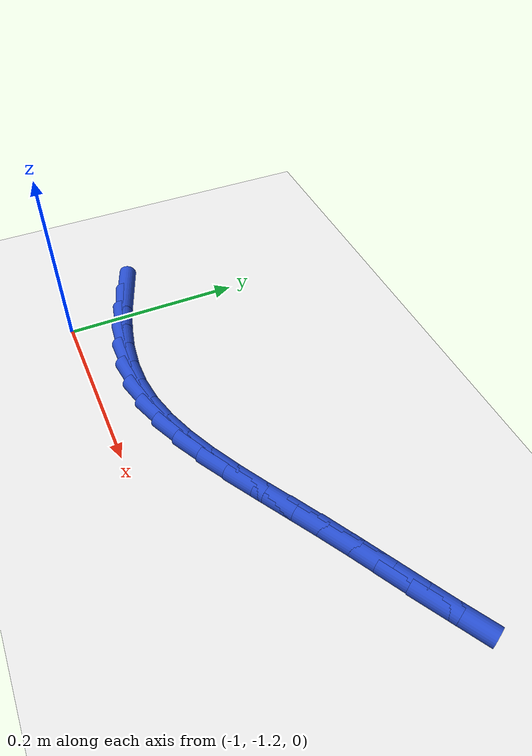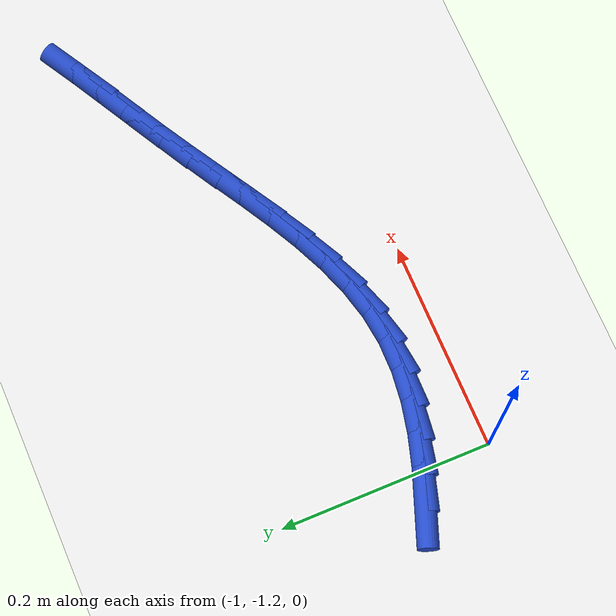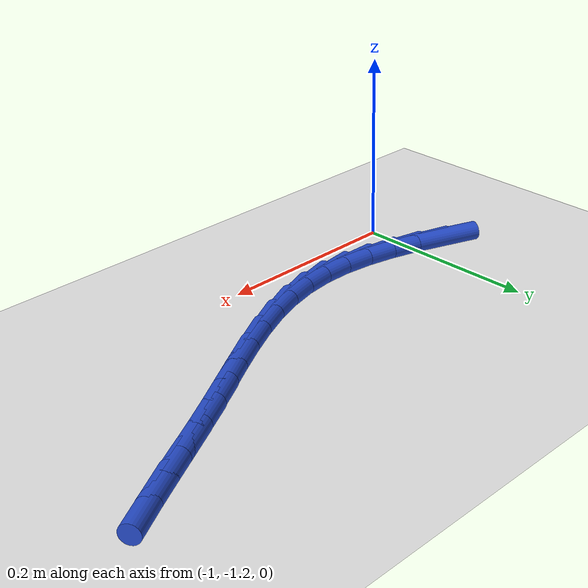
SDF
<sdf version="1.6">
 <world name="default">
  <model name="ground_plane">
   <static>1</static>
   <link name="link">
    <collision name="collision">
     <geometry><plane><normal>0 0 1</normal><size>100 100</size></plane></geometry>
     <surface><friction><ode><mu>100</mu><mu2>50</mu2></ode></friction></surface>
    </collision>
    <visual name="visual">
     <cast_shadows>0</cast_shadows>
     <geometry><plane><normal>0 0 1</normal><size>100 100</size></plane></geometry>
     <material>
      <script><uri>file://media/materials/scripts/gazebo.material</uri><name>Gazebo/WhiteGlow</name></script>
     </material>
    </visual>
   </link>
  </model>
  <model name="line">
   <link name="link_167">
    <pose>-1.0293642330541921 -1.1243338561593095 0.01 0 1.57 -0.3585178327819252</pose>
    <collision name="collision">
     <geometry><cylinder><radius>0.01</radius><length>0.08</length></cylinder></geometry>
    </collision>
    <visual name="visual">
     <material>
      <script><name>Gazebo/Blue</name><uri>file://media/materials/scripts/gazebo.material</uri></script>
     </material>
     <geometry><cylinder><radius>0.01</radius><length>0.08</length></cylinder></geometry>
    </visual>
   </link>
   <link name="link_168">
    <pose>-0.9989030900524057 -1.1357480008445153 0.01 0 1.57 -0.29635444144100104</pose>
    <collision name="collision">
     <geometry><cylinder><radius>0.01</radius><length>0.08</length></cylinder></geometry>
    </collision>
    <visual name="visual">
     <material>
      <script><name>Gazebo/Blue</name><uri>file://media/materials/scripts/gazebo.material</uri></script>
     </material>
     <geometry><cylinder><radius>0.01</radius><length>0.08</length></cylinder></geometry>
    </visual>
   </link>
   <link name="link_169">
    <pose>-0.9685378671160609 -1.1450199103271503 0.01 0 1.57 -0.2180742663289672</pose>
    <collision name="collision">
     <geometry><cylinder><radius>0.01</radius><length>0.08</length></cylinder></geometry>
    </collision>
    <visual name="visual">
     <material>
      <script><name>Gazebo/Blue</name><uri>file://media/materials/scripts/gazebo.material</uri></script>
     </material>
     <geometry><cylinder><radius>0.01</radius><length>0.08</length></cylinder></geometry>
    </visual>
   </link>
   <link name="link_170">
    <pose>-0.9382914848358047 -1.151722455956401 0.01 0 1.57 -0.12248949251247106</pose>
    <collision name="collision">
     <geometry><cylinder><radius>0.01</radius><length>0.08</length></cylinder></geometry>
    </collision>
    <visual name="visual">
     <material>
      <script><name>Gazebo/Blue</name><uri>file://media/materials/scripts/gazebo.material</uri></script>
     </material>
     <geometry><cylinder><radius>0.01</radius><length>0.08</length></cylinder></geometry>
    </visual>
   </link>
   <link name="link_171">
    <pose>-0.9081868638022816 -1.155428509081456 0.01 0 1.57 -0.009433004892403611</pose>
    <collision name="collision">
     <geometry><cylinder><radius>0.01</radius><length>0.08</length></cylinder></geometry>
    </collision>
    <visual name="visual">
     <material>
      <script><name>Gazebo/Blue</name><uri>file://media/materials/scripts/gazebo.material</uri></script>
     </material>
     <geometry><cylinder><radius>0.01</radius><length>0.08</length></cylinder></geometry>
    </visual>
   </link>
   <link name="link_172">
    <pose>-0.8782469246061372 -1.1557109410515023 0.01 0 1.57 0.11899926325304766</pose>
    <collision name="collision">
     <geometry><cylinder><radius>0.01</radius><length>0.08</length></cylinder></geometry>
    </collision>
    <visual name="visual">
     <material>
      <script><name>Gazebo/Blue</name><uri>file://media/materials/scripts/gazebo.material</uri></script>
     </material>
     <geometry><cylinder><radius>0.01</radius><length>0.08</length></cylinder></geometry>
    </visual>
   </link>
   <link name="link_173">
    <pose>-0.8484940218625566 -1.152153559854448 0.01 0 1.57 0.2445189363759107</pose>
    <collision name="collision">
     <geometry><cylinder><radius>0.01</radius><length>0.08</length></cylinder></geometry>
    </collision>
    <visual name="visual">
     <material>
      <script><name>Gazebo/Blue</name><uri>file://media/materials/scripts/gazebo.material</uri></script>
     </material>
     <geometry><cylinder><radius>0.01</radius><length>0.08</length></cylinder></geometry>
    </visual>
   </link>
   <link name="link_174">
    <pose>-0.8189279312833305 -1.1447764773939568 0.01 0 1.57 0.346039063875119</pose>
    <collision name="collision">
     <geometry><cylinder><radius>0.01</radius><length>0.08</length></cylinder></geometry>
    </collision>
    <visual name="visual">
     <material>
      <script><name>Gazebo/Blue</name><uri>file://media/materials/scripts/gazebo.material</uri></script>
     </material>
     <geometry><cylinder><radius>0.01</radius><length>0.08</length></cylinder></geometry>
    </visual>
   </link>
   <link name="link_175">
    <pose>-0.7895187597805275 -1.1341731112504632 0.01 0 1.57 0.4234041332873807</pose>
    <collision name="collision">
     <geometry><cylinder><radius>0.01</radius><length>0.08</length></cylinder></geometry>
    </collision>
    <visual name="visual">
     <material>
      <script><name>Gazebo/Blue</name><uri>file://media/materials/scripts/gazebo.material</uri></script>
     </material>
     <geometry><cylinder><radius>0.01</radius><length>0.08</length></cylinder></geometry>
    </visual>
   </link>
   <link name="link_176">
    <pose>-0.7602345970808984 -1.120975858127456 0.01 0 1.57 0.47896337184670973</pose>
    <collision name="collision">
     <geometry><cylinder><radius>0.01</radius><length>0.08</length></cylinder></geometry>
    </collision>
    <visual name="visual">
     <material>
      <script><name>Gazebo/Blue</name><uri>file://media/materials/scripts/gazebo.material</uri></script>
     </material>
     <geometry><cylinder><radius>0.01</radius><length>0.08</length></cylinder></geometry>
    </visual>
   </link>
   <link name="link_177">
    <pose>-0.7310435329111921 -1.1058171147284215 0.01 0 1.57 0.5150527446490639</pose>
    <collision name="collision">
     <geometry><cylinder><radius>0.01</radius><length>0.08</length></cylinder></geometry>
    </collision>
    <visual name="visual">
     <material>
      <script><name>Gazebo/Blue</name><uri>file://media/materials/scripts/gazebo.material</uri></script>
     </material>
     <geometry><cylinder><radius>0.01</radius><length>0.08</length></cylinder></geometry>
    </visual>
   </link>
   <link name="link_178">
    <pose>-0.7019136569981586 -1.089329277756849 0.01 0 1.57 0.5334209925761403</pose>
    <collision name="collision">
     <geometry><cylinder><radius>0.01</radius><length>0.08</length></cylinder></geometry>
    </collision>
    <visual name="visual">
     <material>
      <script><name>Gazebo/Blue</name><uri>file://media/materials/scripts/gazebo.material</uri></script>
     </material>
     <geometry><cylinder><radius>0.01</radius><length>0.08</length></cylinder></geometry>
    </visual>
   </link>
   <link name="link_179">
    <pose>-0.6728130590685486 -1.0721447439162262 0.01 0 1.57 0.5350180203249615</pose>
    <collision name="collision">
     <geometry><cylinder><radius>0.01</radius><length>0.08</length></cylinder></geometry>
    </collision>
    <visual name="visual">
     <material>
      <script><name>Gazebo/Blue</name><uri>file://media/materials/scripts/gazebo.material</uri></script>
     </material>
     <geometry><cylinder><radius>0.01</radius><length>0.08</length></cylinder></geometry>
    </visual>
   </link>
   <link name="link_180">
    <pose>-0.6437098288491119 -1.0548959099100408 0.01 0 1.57 0.5210007641397881</pose>
    <collision name="collision">
     <geometry><cylinder><radius>0.01</radius><length>0.08</length></cylinder></geometry>
    </collision>
    <visual name="visual">
     <material>
      <script><name>Gazebo/Blue</name><uri>file://media/materials/scripts/gazebo.material</uri></script>
     </material>
     <geometry><cylinder><radius>0.01</radius><length>0.08</length></cylinder></geometry>
    </visual>
   </link>
   <link name="link_181">
    <pose>-0.6145799417899336 -1.0381785172460294 0.01 0 1.57 0.5058787480859831</pose>
    <collision name="collision">
     <geometry><cylinder><radius>0.01</radius><length>0.08</length></cylinder></geometry>
    </collision>
    <visual name="visual">
     <material>
      <script><name>Gazebo/Blue</name><uri>file://media/materials/scripts/gazebo.material</uri></script>
     </material>
     <geometry><cylinder><radius>0.01</radius><length>0.08</length></cylinder></geometry>
    </visual>
   </link>
   <link name="link_182">
    <pose>-0.5855098387949114 -1.0220748310314773 0.01 0 1.57 0.5007760300618741</pose>
    <collision name="collision">
     <geometry><cylinder><radius>0.01</radius><length>0.08</length></cylinder></geometry>
    </collision>
    <visual name="visual">
     <material>
      <script><name>Gazebo/Blue</name><uri>file://media/materials/scripts/gazebo.material</uri></script>
     </material>
     <geometry><cylinder><radius>0.01</radius><length>0.08</length></cylinder></geometry>
    </visual>
   </link>
   <link name="link_183">
    <pose>-0.5566673042555006 -1.0062890075645439 0.01 0 1.57 0.5062827857757162</pose>
    <collision name="collision">
     <geometry><cylinder><radius>0.01</radius><length>0.08</length></cylinder></geometry>
    </collision>
    <visual name="visual">
     <material>
      <script><name>Gazebo/Blue</name><uri>file://media/materials/scripts/gazebo.material</uri></script>
     </material>
     <geometry><cylinder><radius>0.01</radius><length>0.08</length></cylinder></geometry>
    </visual>
   </link>
   <link name="link_184">
    <pose>-0.5282220123687428 -0.9905164187629563 0.01 0 1.57 0.522748099352405</pose>
    <collision name="collision">
     <geometry><cylinder><radius>0.01</radius><length>0.08</length></cylinder></geometry>
    </collision>
    <visual name="visual">
     <material>
      <script><name>Gazebo/Blue</name><uri>file://media/materials/scripts/gazebo.material</uri></script>
     </material>
     <geometry><cylinder><radius>0.01</radius><length>0.08</length></cylinder></geometry>
    </visual>
   </link>
  </model>
 </world>
</sdf>
